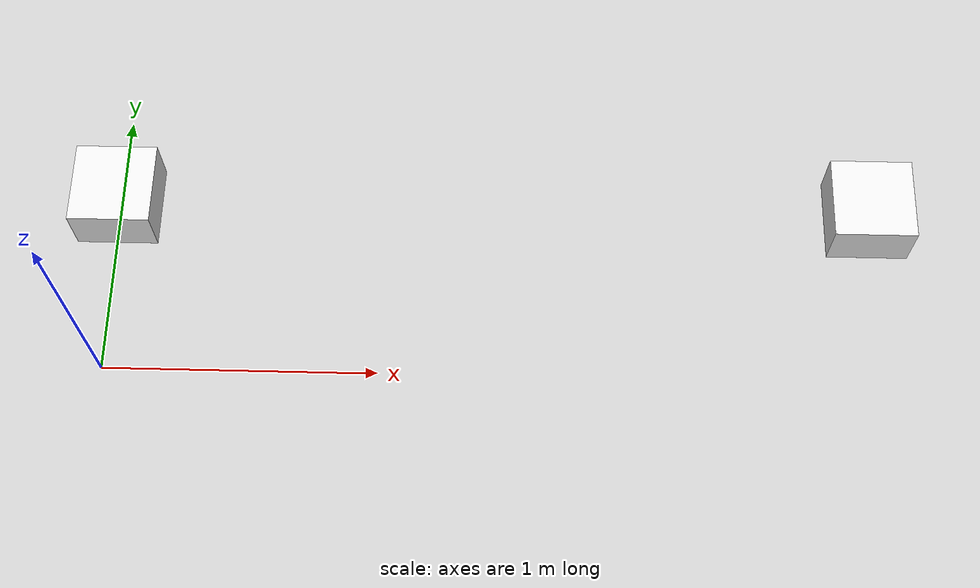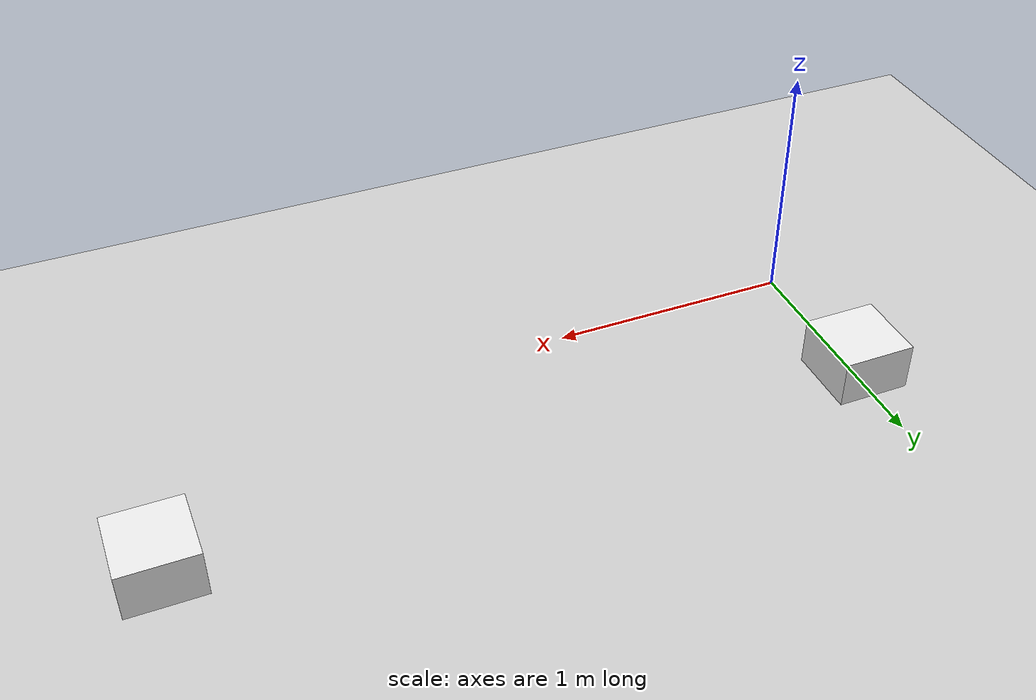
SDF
<sdf version="1.6">
 <world name="default">
  <light name="sun" type="directional">
   <pose>0 0 10 0 -0 0</pose>
   <diffuse>0.8 0.8 0.8 1</diffuse>
   <specular>0.2 0.2 0.2 1</specular>
   <attenuation>
    <range>1000</range>
    <constant>0.9</constant>
    <linear>0.01</linear>
    <quadratic>0.001</quadratic>
   </attenuation>
   <direction>-0.5 0.1 -0.9</direction>
  </light>
  <model name="ground_plane">
   <static>1</static>
   <link name="link">
    <collision name="collision">
     <geometry><plane><normal>0 0 1</normal><size>100 100</size></plane></geometry>
     <surface><friction><ode><mu>100</mu><mu2>50</mu2></ode></friction></surface>
    </collision>
    <visual name="visual">
     <cast_shadows>0</cast_shadows>
     <geometry><plane><normal>0 0 1</normal><size>100 100</size></plane></geometry>
     <material>
      <script><uri>file://media/materials/scripts/gazebo.material</uri><name>Gazebo/Grey</name></script>
     </material>
    </visual>
   </link>
  </model>
  <gravity>0 0 -9.8</gravity>
  <magnetic_field>6e-06 2.3e-05 -4.2e-05</magnetic_field>
  <atmosphere type="adiabatic"/>
  <physics name="default_physics" default="0" type="ode">
   <max_step_size>0.001</max_step_size>
   <real_time_factor>1</real_time_factor>
   <real_time_update_rate>1000</real_time_update_rate>
  </physics>
  <scene><ambient>0.4 0.4 0.4 1</ambient><background>0.7 0.7 0.7 1</background><shadows>1</shadows></scene>
  <spherical_coordinates>
   <surface_model>EARTH_WGS84</surface_model>
   <latitude_deg>0</latitude_deg>
   <longitude_deg>0</longitude_deg>
   <elevation>0</elevation>
   <heading_deg>0</heading_deg>
  </spherical_coordinates>
  <model name="table">
   <link name="table_box_link">
    <inertial>
     <mass>1</mass>
     <inertia>
      <ixx>0.166667</ixx>
      <ixy>0</ixy>
      <ixz>0</ixz>
      <iyy>0.166667</iyy>
      <iyz>0</iyz>
      <izz>0.166667</izz>
     </inertia>
    </inertial>
    <visual name="visual">
     <geometry><box><size>0.3 0.3 0.2</size></box></geometry>
     <material>
      <script><name>Gazebo/White</name><uri>file://media/materials/scripts/gazebo.material</uri></script>
      <shader type="pixel"/>
     </material>
    </visual>
    <collision name="collision">
     <geometry><box><size>0.3 0.3 0.2</size></box></geometry>
     <surface>
      <friction>
       <ode><mu>0.6</mu><mu2>0.6</mu2><fdir1>0 0 0</fdir1><slip1>0</slip1><slip2>0</slip2></ode>
       <torsional>
        <coefficient>1</coefficient>
        <patch_radius>0</patch_radius>
        <surface_radius>0</surface_radius>
        <use_patch_radius>1</use_patch_radius>
        <ode><slip>0</slip></ode>
       </torsional>
      </friction>
      <bounce><restitution_coefficient>0</restitution_coefficient><threshold>1e+06</threshold></bounce>
      <contact>
       <collide_without_contact>0</collide_without_contact>
       <collide_without_contact_bitmask>1</collide_without_contact_bitmask>
       <collide_bitmask>1</collide_bitmask>
       <ode>
        <soft_cfm>0</soft_cfm>
        <soft_erp>0.2</soft_erp>
        <kp>1e+13</kp>
        <kd>1</kd>
        <max_vel>0.01</max_vel>
        <min_depth>0</min_depth>
       </ode>
       <bullet>
        <split_impulse>1</split_impulse>
        <split_impulse_penetration_threshold>-0.01</split_impulse_penetration_threshold>
        <soft_cfm>0</soft_cfm>
        <soft_erp>0.2</soft_erp>
        <kp>1e+13</kp>
        <kd>1</kd>
       </bullet>
      </contact>
     </surface>
    </collision>
   </link>
   <static>1</static>
   <pose>0 0.65 0.1 0 -0 0</pose>
  </model>
  <model name="bottom">
   <link name="coke_can">
    <inertial>
     <mass>1e-06</mass>
     <inertia><ixx>0.00016</ixx><ixy>0</ixy><ixz>0</ixz><iyy>0.00016</iyy><iyz>0</iyz><izz>6e-05</izz></inertia>
    </inertial>
    <visual name="visual">
     <geometry><mesh><uri>model://coke_can/meshes/coke_can.dae</uri><scale>0.2 0.15 0.18</scale></mesh></geometry>
     <material>
      <script><name>Gazebo/Green</name><uri>file://media/materials/scripts/gazebo.material</uri></script>
      <shader type="pixel"/>
     </material>
    </visual>
    <collision name="collision">
     <geometry>
      <mesh><uri>/home/tianbot/.gazebo/models/coke_can/meshes/coke_can.dae</uri><scale>0.2 0.15 0.18</scale></mesh>
     </geometry>
     <surface>
      <friction>
       <ode><mu>100</mu><mu2>100</mu2><fdir1>0 0 0</fdir1><slip1>0</slip1><slip2>0</slip2></ode>
       <torsional>
        <coefficient>1</coefficient>
        <patch_radius>0</patch_radius>
        <surface_radius>0</surface_radius>
        <use_patch_radius>1</use_patch_radius>
        <ode><slip>0</slip></ode>
       </torsional>
      </friction>
      <bounce><restitution_coefficient>0</restitution_coefficient><threshold>1e+06</threshold></bounce>
      <contact>
       <collide_without_contact>0</collide_without_contact>
       <collide_without_contact_bitmask>1</collide_without_contact_bitmask>
       <collide_bitmask>1</collide_bitmask>
       <ode>
        <soft_cfm>0</soft_cfm>
        <soft_erp>0.2</soft_erp>
        <kp>1e+07</kp>
        <kd>1</kd>
        <max_vel>0.1</max_vel>
        <min_depth>0.001</min_depth>
       </ode>
       <bullet>
        <split_impulse>1</split_impulse>
        <split_impulse_penetration_threshold>-0.01</split_impulse_penetration_threshold>
        <soft_cfm>0</soft_cfm>
        <soft_erp>0.2</soft_erp>
        <kp>1e+07</kp>
        <kd>1</kd>
       </bullet>
      </contact>
     </surface>
    </collision>
   </link>
   <static>0</static>
   <pose>-0.000326 0.599107 0.116513 -0.010645 0.003866 6.9e-05</pose>
  </model>
  <model name="table_clone">
   <link name="table_box_link">
    <inertial>
     <mass>1</mass>
     <inertia>
      <ixx>0.166667</ixx>
      <ixy>0</ixy>
      <ixz>0</ixz>
      <iyy>0.166667</iyy>
      <iyz>0</iyz>
      <izz>0.166667</izz>
     </inertia>
    </inertial>
    <visual name="visual">
     <geometry><box><size>0.3 0.3 0.2</size></box></geometry>
     <material>
      <script><name>Gazebo/White</name><uri>file://media/materials/scripts/gazebo.material</uri></script>
      <shader type="pixel"/>
     </material>
    </visual>
    <collision name="collision">
     <geometry><box><size>0.3 0.3 0.2</size></box></geometry>
     <surface>
      <friction>
       <ode><mu>0.6</mu><mu2>0.6</mu2><fdir1>0 0 0</fdir1><slip1>0</slip1><slip2>0</slip2></ode>
       <torsional>
        <coefficient>1</coefficient>
        <patch_radius>0</patch_radius>
        <surface_radius>0</surface_radius>
        <use_patch_radius>1</use_patch_radius>
        <ode><slip>0</slip></ode>
       </torsional>
      </friction>
      <bounce><restitution_coefficient>0</restitution_coefficient><threshold>1e+06</threshold></bounce>
      <contact>
       <collide_without_contact>0</collide_without_contact>
       <collide_without_contact_bitmask>1</collide_without_contact_bitmask>
       <collide_bitmask>1</collide_bitmask>
       <ode>
        <soft_cfm>0</soft_cfm>
        <soft_erp>0.2</soft_erp>
        <kp>1e+13</kp>
        <kd>1</kd>
        <max_vel>0.01</max_vel>
        <min_depth>0</min_depth>
       </ode>
       <bullet>
        <split_impulse>1</split_impulse>
        <split_impulse_penetration_threshold>-0.01</split_impulse_penetration_threshold>
        <soft_cfm>0</soft_cfm>
        <soft_erp>0.2</soft_erp>
        <kp>1e+13</kp>
        <kd>1</kd>
       </bullet>
      </contact>
     </surface>
    </collision>
   </link>
   <static>1</static>
   <pose>2.8 0.65 0.1 0 -0 0</pose>
  </model>
 </world>
</sdf>
